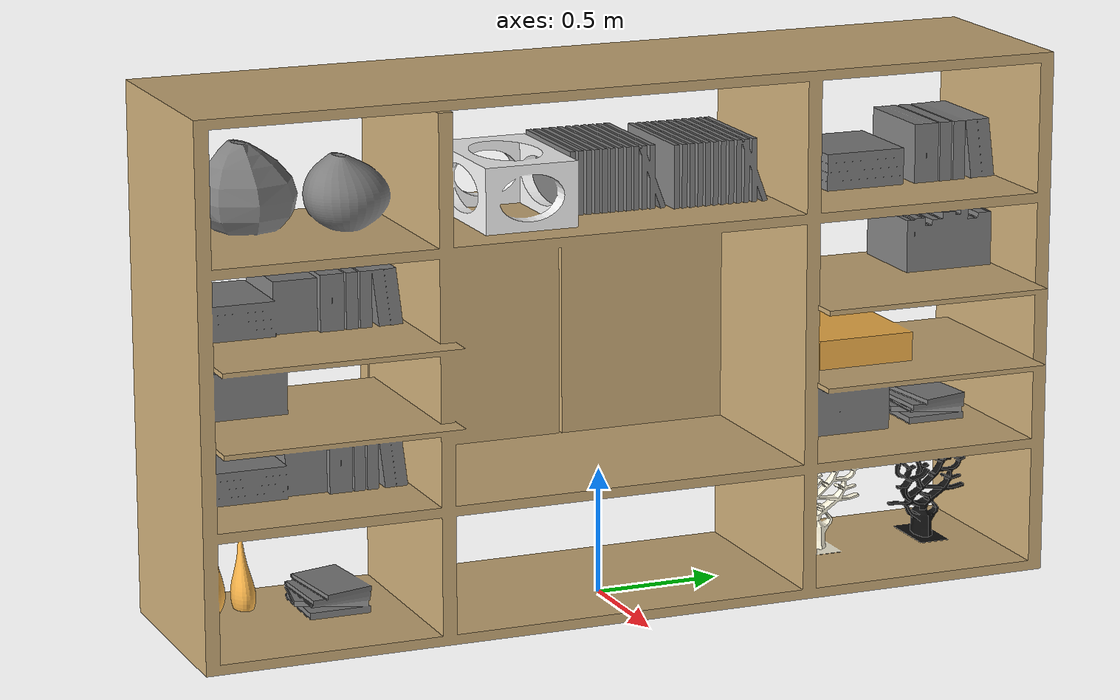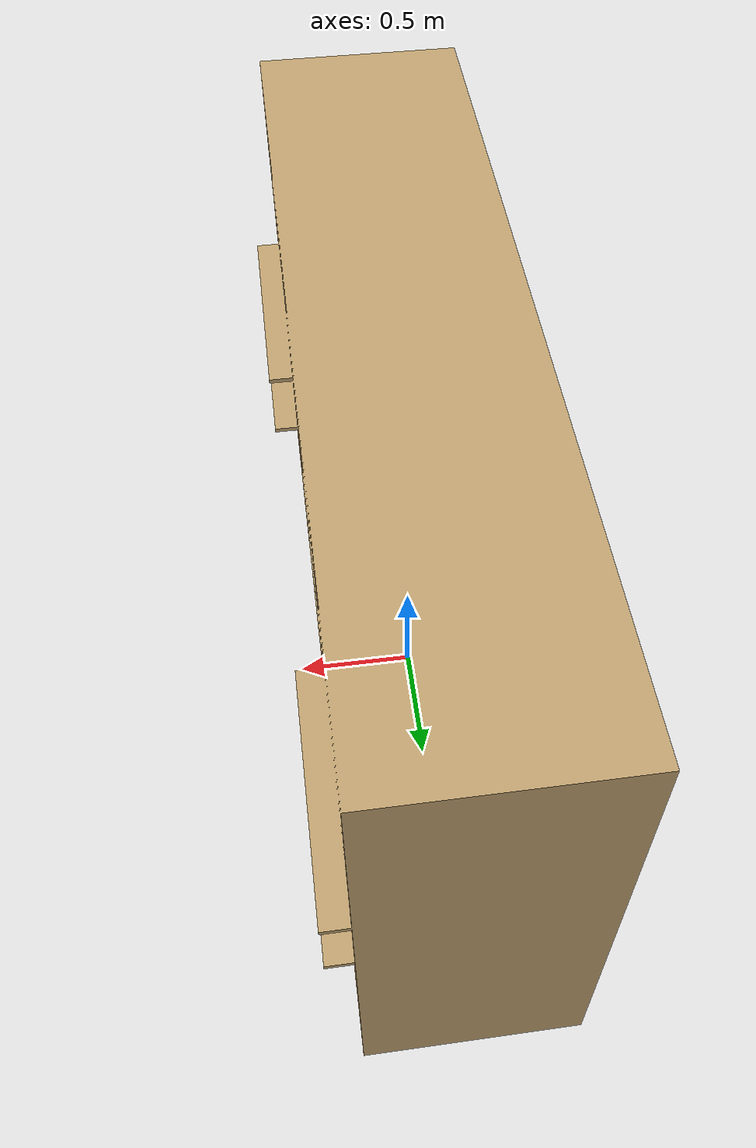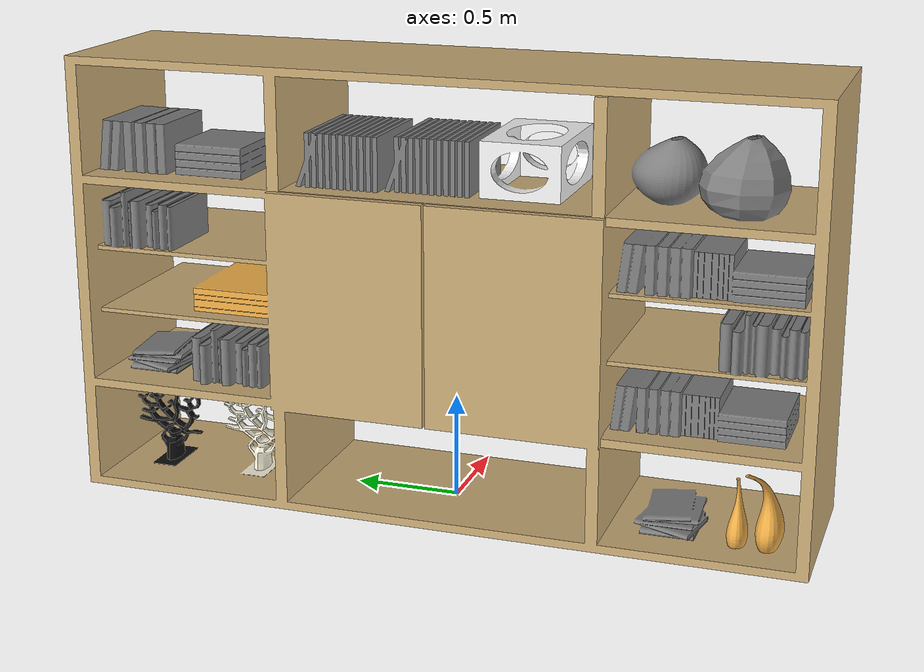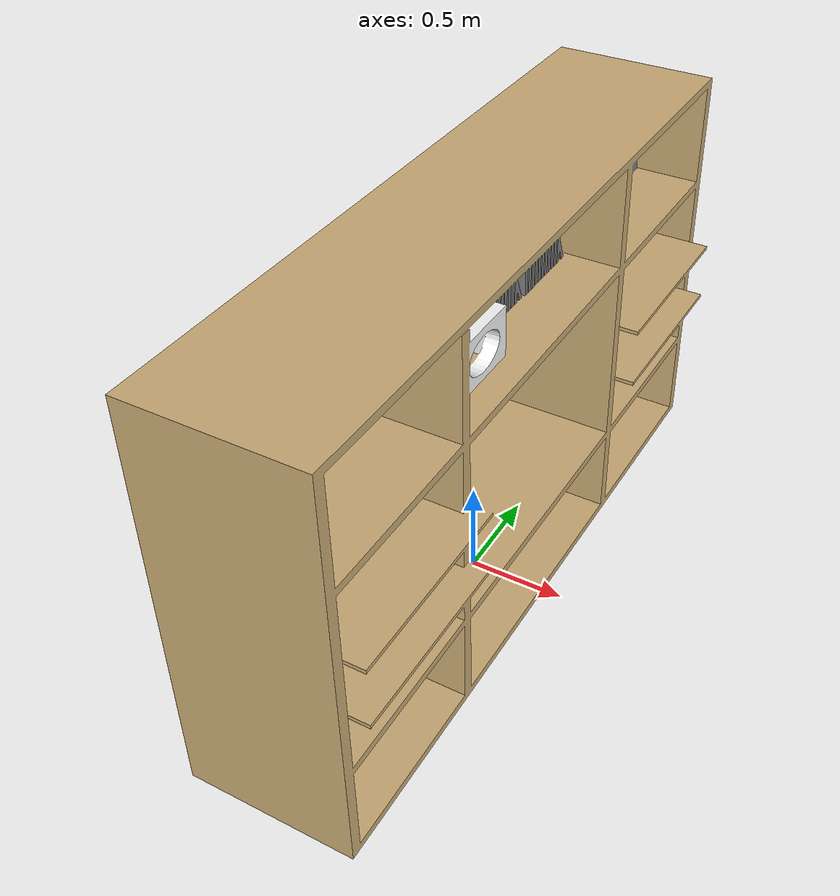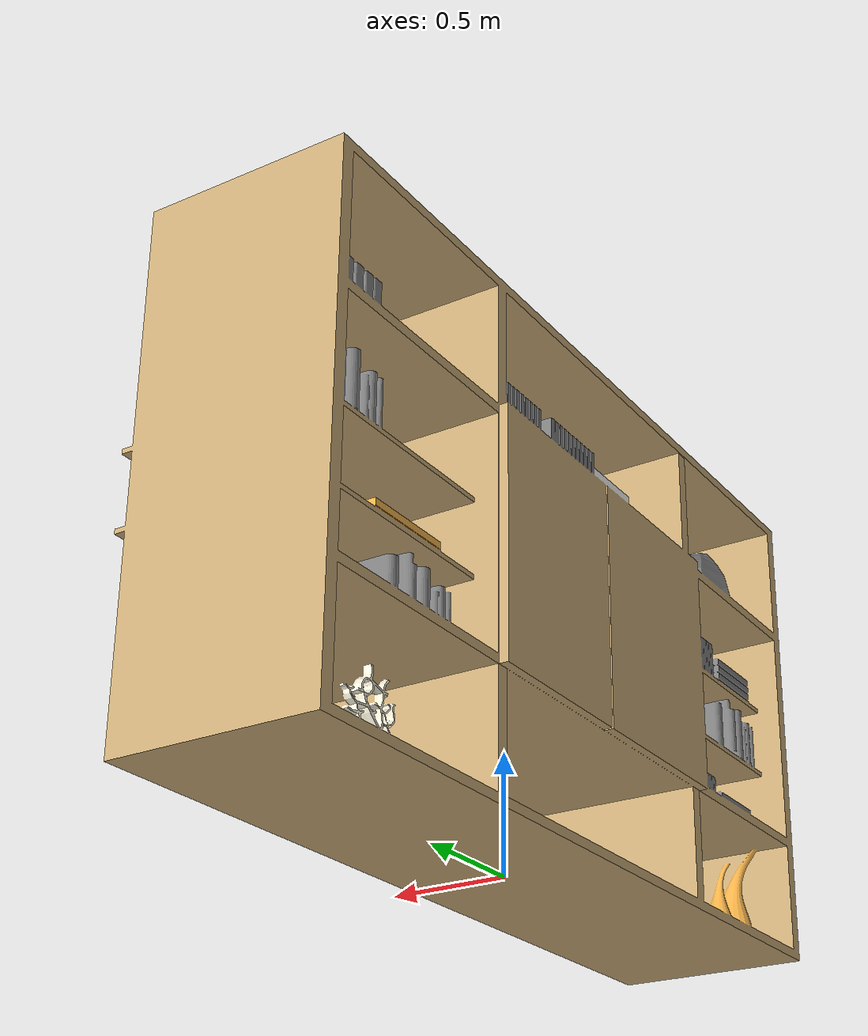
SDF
<sdf version="1.6">
	<model name="shelf2">
		<static>true</static>
		<pose>0 0 0 0 0 0</pose>
		<link name="bed_axis">
			<collision name="collision">
				<geometry>
					<mesh>
						<uri>meshes/shelf2.dae</uri>
					</mesh>
				</geometry>
			</collision>
			<visual name="visual">
				<geometry>
					<mesh>
						<uri>meshes/shelf2.dae</uri>
					</mesh>
				</geometry>
			</visual>
		</link>
	</model>
</sdf>
